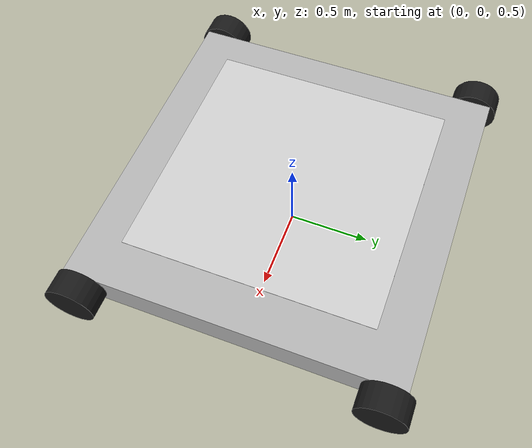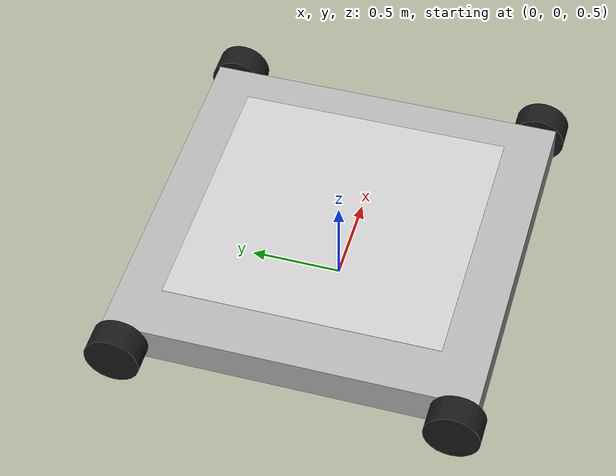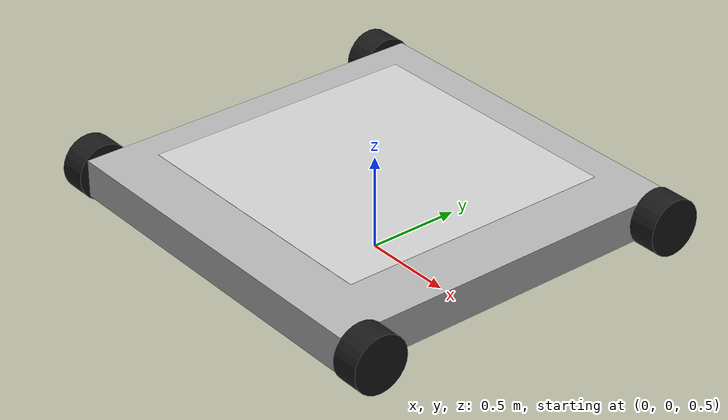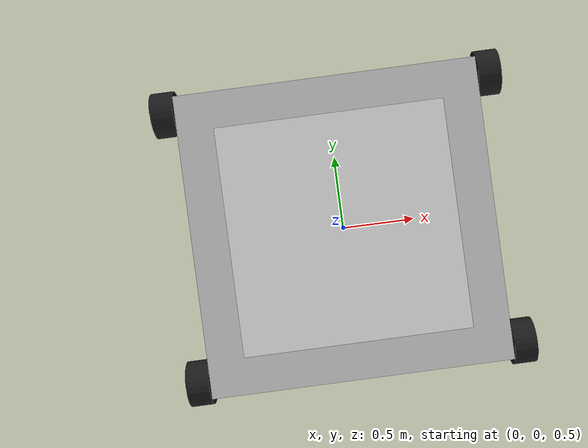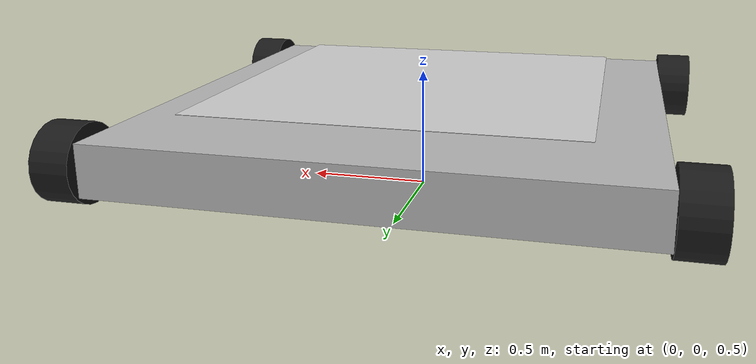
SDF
<sdf version="1.7">
 <world name="aruco_runway_rover">
  <plugin filename="gz-sim-physics-system" name="gz::sim::systems::Physics"/>
  <plugin filename="gz-sim-user-commands-system" name="gz::sim::systems::UserCommands"/>
  <plugin filename="gz-sim-scene-broadcaster-system" name="gz::sim::systems::SceneBroadcaster"/>
  <plugin filename="gz-sim-imu-system" name="gz::sim::systems::Imu"/>
  <scene><ambient>1.0 1.0 1.0</ambient><background>0.8 0.8 0.8</background></scene>
  <light type="directional" name="sun">
   <pose>0 0 10 0 0 0</pose>
   <diffuse>0.8 0.8 0.8 1</diffuse>
   <specular>0.8 0.8 0.8 1</specular>
   <attenuation>
    <range>1000</range>
    <constant>0.9</constant>
    <linear>0.01</linear>
    <quadratic>0.001</quadratic>
   </attenuation>
   <direction>-0.5 0.1 -0.9</direction>
  </light>
  <include><pose degrees="true">0 0 0.5 0 0 90</pose><uri>model://rover_with_aruco</uri></include>
 </world>
</sdf>

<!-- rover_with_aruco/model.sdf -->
<sdf version='1.9'>
  <model name='rover_with_aruco'>
    <!-- =========================== CHASSIS (底盤) =========================== -->
    <link name='base_link'>
      <pose>0 0 0.3 0 0 0</pose>

      <!-- Inertial properties (慣性) -->
      <inertial>
        <pose>0 0 0 0 0 0</pose>
        <mass>80.0</mass>
        <inertia>
          <ixx>26.666667</ixx>
          <ixy>0</ixy>
          <ixz>0</ixz>
          <iyy>26.666667</iyy>
          <iyz>0</iyz>
          <izz>53.333333</izz>
        </inertia>
      </inertial>

      <!-- collision (碰撞) -->
      <collision name='base_coll'>
        <pose>0 0 0 0 0 0</pose>
        <geometry>
          <box>
            <size>2 2 0.2</size>
          </box>
        </geometry>
      </collision>

      <!-- Visual and collision (外觀與顏色) -->
      <visual name='base_vis'>
        <pose>0 0 0 0 0 0</pose>
        <geometry>
          <box>
            <size>2 2 0.2</size>
          </box>
        </geometry>
        <material>
          <diffuse>0.7 0.7 0.7 1</diffuse>
          <specular>0.1 0.1 0.1 1</specular>
        </material>
      </visual>

      <!-- IMU 感測器 -->
      <sensor name="imu_sensor" type="imu">
        <pose degrees="true">0 0 0 180 0 0</pose>
        <always_on>1</always_on>
        <update_rate>1000</update_rate>
      </sensor>

      <!-- Air 氣壓計 -->
      <sensor name="air_pressure_sensor" type="air_pressure">
        <always_on>1</always_on>
        <update_rate>50</update_rate>
        <air_pressure>
          <pressure>
            <noise type="gaussian">
              <mean>0</mean>
              <stddev>0.01</stddev>
            </noise>
          </pressure>
        </air_pressure>
      </sensor>
    </link>

    <!-- =========================== 左前輪 =========================== -->
    <link name='lf_wheel_link'>
      <pose>0.90 1.075 0.30 0 0 0</pose>

      <!-- Inertial properties (慣性) -->
      <inertial>
        <pose>0 0 0 0 0 0</pose>
        <mass>4.0</mass>
        <inertia>
          <ixx>0.0381</ixx>
          <ixy>0</ixy>
          <ixz>0</ixz>
          <iyy>0.0381</iyy>
          <iyz>0</iyz>
          <izz>0.0612</izz>
        </inertia>
      </inertial>

      <!-- collision (碰撞) -->
      <collision name='lf_coll'>
        <pose>0 0 0 1.57079632679 0 0</pose>
        <geometry>
          <cylinder>
            <radius>0.15</radius>
            <length>0.15</length>
          </cylinder>
        </geometry>

        <!-- 表面係數 -->
        <surface>
          <friction>
            <ode>
              <mu>0.70</mu>
              <mu2>0.625</mu2>
              <fdir1>1 0 0</fdir1>
            </ode>
            <torsional>
              <coefficient>0.15</coefficient>
              <use_patch_radius>1</use_patch_radius>
              <surface_radius>0.15</surface_radius>
            </torsional>
          </friction>
          <bounce>
            <restitution_coefficient>0</restitution_coefficient>
            <threshold>1e6</threshold>
          </bounce>
          <contact>
            <ode>
              <min_depth>0.001</min_depth>
              <max_vel>0.0</max_vel>
              <kp>1.0e6</kp>
              <kd>100.0</kd>
            </ode>
          </contact>
        </surface>
      </collision>

      <!-- Visual and collision (外觀與顏色) -->
      <visual name='lf_vis'>
        <pose>0 0 0 1.57079632679 0 0</pose>
        <geometry>
          <cylinder>
            <radius>0.15</radius>
            <length>0.15</length>
          </cylinder>
        </geometry>
        <material>
          <diffuse>0.1 0.1 0.1 1</diffuse>
          <specular>0.5 0.5 0.5 1</specular>
        </material>
      </visual>
    </link>

    <!-- Joint Controllers (控制) -->
    <joint name='motor_lf' type='revolute'>
      <parent>base_link</parent>
      <child>lf_wheel_link</child>
      <axis>
        <xyz>0 1 0</xyz>
        <limit>
          <lower>-1e+16</lower>
          <upper>1e+16</upper>
        </limit>
        <dynamics>
          <damping>0.0005</damping>
        </dynamics>
      </axis>
    </joint>

    <!-- =========================== 左後輪 =========================== -->
    <link name='lb_wheel_link'>
      <pose>-0.90 1.075 0.30 0 0 0</pose>

      <!-- Inertial properties (慣性) -->
      <inertial>
        <pose>0 0 0 0 0 0</pose>
        <mass>4.0</mass>
        <inertia>
          <ixx>0.0381</ixx>
          <ixy>0</ixy>
          <ixz>0</ixz>
          <iyy>0.0381</iyy>
          <iyz>0</iyz>
          <izz>0.0612</izz>
        </inertia>
      </inertial>

      <!-- collision (碰撞) -->
      <collision name='lb_coll'>
        <pose>0 0 0 1.57079632679 0 0</pose>
        <geometry>
          <cylinder>
            <radius>0.15</radius>
            <length>0.15</length>
          </cylinder>
        </geometry>

        <!-- 表面係數 -->
        <surface>
          <friction>
            <ode>
              <mu>0.70</mu>
              <mu2>0.625</mu2>
              <fdir1>1 0 0</fdir1>
            </ode>
            <torsional>
              <coefficient>0.15</coefficient>
              <use_patch_radius>1</use_patch_radius>
              <surface_radius>0.15</surface_radius>
            </torsional>
          </friction>
          <bounce>
            <restitution_coefficient>0</restitution_coefficient>
            <threshold>1e6</threshold>
          </bounce>
          <contact>
            <ode>
              <min_depth>0.001</min_depth>
              <max_vel>0.0</max_vel>
              <kp>1.0e6</kp>
              <kd>100.0</kd>
            </ode>
          </contact>
        </surface>
      </collision>

      <!-- Visual and collision (外觀與顏色) -->
      <visual name='lb_vis'>
        <pose>0 0 0 1.57079632679 0 0</pose>
        <geometry>
          <cylinder>
            <radius>0.15</radius>
            <length>0.15</length>
          </cylinder>
        </geometry>
        <material>
          <diffuse>0.1 0.1 0.1 1</diffuse>
          <specular>0.5 0.5 0.5 1</specular>
        </material>
      </visual>
    </link>

    <!-- Joint Controllers (控制) -->
    <joint name='motor_lb' type='revolute'>
      <parent>base_link</parent>
      <child>lb_wheel_link</child>
      <axis>
        <xyz>0 1 0</xyz>
        <limit>
          <lower>-1e+16</lower>
          <upper>1e+16</upper>
        </limit>
        <dynamics>
          <damping>0.0005</damping>
        </dynamics>
      </axis>
    </joint>

    <!-- =========================== 右前輪 =========================== -->
    <link name='rf_wheel_link'>
      <pose>0.90 -1.075 0.30 0 0 0</pose>

      <!-- Inertial properties (慣性) -->
      <inertial>
        <pose>0 0 0 0 0 0</pose>
        <mass>4.0</mass>
        <inertia>
          <ixx>0.0381</ixx>
          <ixy>0</ixy>
          <ixz>0</ixz>
          <iyy>0.0381</iyy>
          <iyz>0</iyz>
          <izz>0.0612</izz>
        </inertia>
      </inertial>

      <!-- collision (碰撞) -->
      <collision name='rf_coll'>
        <pose>0 0 0 1.57079632679 0 0</pose>
        <geometry>
          <cylinder>
            <radius>0.15</radius>
            <length>0.15</length>
          </cylinder>
        </geometry>

        <!-- 表面係數 -->
        <surface>
          <friction>
            <ode>
              <mu>0.70</mu>
              <mu2>0.625</mu2>
              <fdir1>1 0 0</fdir1>
            </ode>
            <torsional>
              <coefficient>0.15</coefficient>
              <use_patch_radius>1</use_patch_radius>
              <surface_radius>0.15</surface_radius>
            </torsional>
          </friction>
          <bounce>
            <restitution_coefficient>0</restitution_coefficient>
            <threshold>1e6</threshold>
          </bounce>
          <contact>
            <ode>
              <min_depth>0.001</min_depth>
              <max_vel>0.0</max_vel>
              <kp>1.0e6</kp>
              <kd>100.0</kd>
            </ode>
          </contact>
        </surface>
      </collision>

      <!-- Visual and collision (外觀與顏色) -->
      <visual name='rf_vis'>
        <pose>0 0 0 1.57079632679 0 0</pose>
        <geometry>
          <cylinder>
            <radius>0.15</radius>
            <length>0.15</length>
          </cylinder>
        </geometry>
        <material>
          <diffuse>0.1 0.1 0.1 1</diffuse>
          <specular>0.5 0.5 0.5 1</specular>
        </material>
      </visual>
    </link>

    <!-- Joint Controllers (控制) -->
    <joint name='motor_rf' type='revolute'>
      <parent>base_link</parent>
      <child>rf_wheel_link</child>
      <axis>
        <xyz>0 -1 0</xyz>
        <limit>
          <lower>-1e+16</lower>
          <upper>1e+16</upper>
        </limit>
        <dynamics>
          <damping>0.0005</damping>
        </dynamics>
      </axis>
    </joint>

    <!-- =========================== 右後輪 =========================== -->
    <link name='rb_wheel_link'>
      <pose>-0.90 -1.075 0.30 0 0 0</pose>

      <!-- Inertial properties (慣性) -->
      <inertial>
        <pose>0 0 0 0 0 0</pose>
        <mass>4.0</mass>
        <inertia>
          <ixx>0.0381</ixx>
          <ixy>0</ixy>
          <ixz>0</ixz>
          <iyy>0.0381</iyy>
          <iyz>0</iyz>
          <izz>0.0612</izz>
        </inertia>
      </inertial>

      <!-- collision (碰撞) -->
      <collision name='rb_coll'>
        <pose>0 0 0 1.57079632679 0 0</pose>
        <geometry>
          <cylinder>
            <radius>0.15</radius>
            <length>0.15</length>
          </cylinder>
        </geometry>

        <!-- 表面係數 -->
        <surface>
          <friction>
            <ode>
              <mu>0.70</mu>
              <mu2>0.625</mu2>
              <fdir1>1 0 0</fdir1>
            </ode>
            <torsional>
              <coefficient>0.15</coefficient>
              <use_patch_radius>1</use_patch_radius>
              <surface_radius>0.15</surface_radius>
            </torsional>
          </friction>
          <bounce>
            <restitution_coefficient>0</restitution_coefficient>
            <threshold>1e6</threshold>
          </bounce>
          <contact>
            <ode>
              <min_depth>0.001</min_depth>
              <max_vel>0.0</max_vel>
              <kp>1.0e6</kp>
              <kd>100.0</kd>
            </ode>
          </contact>
        </surface>
      </collision>

      <!-- Visual and collision (外觀與顏色) -->
      <visual name='rb_vis'>
        <pose>0 0 0 1.57079632679 0 0</pose>
        <geometry>
          <cylinder>
            <radius>0.15</radius>
            <length>0.15</length>
          </cylinder>
        </geometry>
        <material>
          <diffuse>0.1 0.1 0.1 1</diffuse>
          <specular>0.5 0.5 0.5 1</specular>
        </material>
      </visual>
    </link>

    <!-- Joint Controllers (控制) -->
    <joint name='motor_rb' type='revolute'>
      <parent>base_link</parent>
      <child>rb_wheel_link</child>
      <axis>
        <xyz>0 -1 0</xyz>
        <limit>
          <lower>-1e+16</lower>
          <upper>1e+16</upper>
        </limit>
        <dynamics>
          <damping>0.0005</damping>
        </dynamics>
      </axis>
    </joint>

    <!-- ======================== ARUCO PANEL ======================== -->
    <link name='aruco_panel_link'>
      <pose degrees="true">0 0 0.455 0 0 -90</pose>

      <!-- Inertial properties (慣性) -->
      <inertial>
        <pose>0 0 0 0 0 0</pose>
        <mass>1.0</mass>
        <inertia>
          <ixx>0.1875</ixx>
          <ixy>0</ixy>
          <ixz>0</ixz>
          <iyy>0.1875</iyy>
          <iyz>0</iyz>
          <izz>0.375</izz>
        </inertia>
      </inertial>

      <!-- collision (碰撞) -->
      <collision name='aruco_coll'>
        <geometry>
          <box>
            <size>1.5 1.5 0.01</size>
          </box>
        </geometry>
      </collision>

      <!-- Visual and collision (外觀與顏色) -->
      <visual name="aruco_visual">
        <pose>0 0 0 0 0 0</pose>
        <cast_shadows>false</cast_shadows>
        <geometry>
          <plane>
            <normal>0 0 1</normal>
            <size>1.5 1.5</size>
          </plane>
        </geometry>
        <material>
          <ambient>0.8 0.8 0.8 1</ambient>
          <diffuse>0.8 0.8 0.8 1</diffuse>
          <specular>0.1 0.1 0.1 1</specular>
          <pbr>
            <metal>
              <albedo_map>materials/textures/aruco_04.png</albedo_map>
              <roughness>0.6</roughness>
              <metalness>0</metalness>
            </metal>
          </pbr>
        </material>
      </visual>
    </link>

    <!-- Joint Controllers (控制) -->
    <joint name='aruco_panel_fixed' type='fixed'>
      <parent>base_link</parent>
      <child>aruco_panel_link</child>
    </joint>

    <!-- ==================== GZ SYSTEM PLUGINS ====================== -->
    <plugin name="gz::sim::systems::JointStatePublisher"
      filename="gz-sim-joint-state-publisher-system">
    </plugin>

    <plugin name='gz::sim::systems::OdometryPublisher' filename='gz-sim-odometry-publisher-system'>
      <odom_frame>odom</odom_frame>
      <robot_base_frame>base_link</robot_base_frame>
      <dimensions>3</dimensions>
    </plugin>

    <plugin filename="gz-sim-apply-joint-force-system"
      name="gz::sim::systems::ApplyJointForce">
      <joint_name>motor_lf</joint_name>
      </plugin>
    <plugin filename="gz-sim-apply-joint-force-system"
      name="gz::sim::systems::ApplyJointForce">
      <joint_name>motor_lb</joint_name>
      </plugin>
    <plugin filename="gz-sim-apply-joint-force-system"
      name="gz::sim::systems::ApplyJointForce">
      <joint_name>motor_rf</joint_name>
    </plugin>
    <plugin
      filename="gz-sim-apply-joint-force-system"
      name="gz::sim::systems::ApplyJointForce">
      <joint_name>motor_rb</joint_name>
    </plugin>

    <!-- ===================== ARDUPILOT PLUGIN ====================== -->
    <plugin name='ArduPilotPlugin' filename='ArduPilotPlugin'>
      <fdm_addr>127.0.0.1</fdm_addr>
      <fdm_port_in>9022</fdm_port_in>
      <connectionTimeoutMaxCount>5</connectionTimeoutMaxCount>
      <lock_step>1</lock_step>
      <!-- Retain user's original transforms; adjust if needed -->
      <gazeboXYZToNED degrees='true'>0 0 0 180 0 90</gazeboXYZToNED>
      <modelXYZToAirplaneXForwardZDown degrees='true'>0 0 0 180 0 0</modelXYZToAirplaneXForwardZDown>
      <imuName>base_link::imu_sensor</imuName>

      <!-- LEFT SIDE (front + rear) -->
      <control channel='0'>
        <jointName>motor_lf</jointName>
        <useForce>1</useForce>
        <type>VELOCITY</type>
        <multiplier>133.33</multiplier>
        <offset>-0.5</offset>
        <servo_min>1000</servo_min>
        <servo_max>2000</servo_max>
        <p_gain>1.4</p_gain>
        <i_gain>0.1</i_gain>
        <d_gain>0.0001</d_gain>
        <i_max>1</i_max>
        <i_min>-1</i_min>
        <cmd_max>22</cmd_max>
        <cmd_min>-22</cmd_min>
      </control>
      <control channel='0'>
        <jointName>motor_lb</jointName>
        <useForce>1</useForce>
        <type>VELOCITY</type>
        <multiplier>133.33</multiplier>
        <offset>-0.5</offset>
        <servo_min>1000</servo_min>
        <servo_max>2000</servo_max>
        <p_gain>1.4</p_gain>
        <i_gain>0.1</i_gain>
        <d_gain>0.0001</d_gain>
        <i_max>1</i_max>
        <i_min>-1</i_min>
        <cmd_max>22</cmd_max>
        <cmd_min>-22</cmd_min>
      </control>

      <!-- RIGHT SIDE (front + rear)  NOTE: negative multiplier for mirrored axis -->
      <control channel='2'>
        <jointName>motor_rf</jointName>
        <useForce>1</useForce>
        <type>VELOCITY</type>
        <multiplier>-133.33</multiplier>
        <offset>-0.5</offset>
        <servo_min>1000</servo_min>
        <servo_max>2000</servo_max>
        <p_gain>1.4</p_gain>
        <i_gain>0.1</i_gain>
        <d_gain>0.0001</d_gain>
        <i_max>1</i_max>
        <i_min>-1</i_min>
        <cmd_max>22</cmd_max>
        <cmd_min>-22</cmd_min>
      </control>
      <control channel='2'>
        <jointName>motor_rb</jointName>
        <useForce>1</useForce>
        <type>VELOCITY</type>
        <multiplier>-133.33</multiplier>
        <offset>-0.5</offset>
        <servo_min>1000</servo_min>
        <servo_max>2000</servo_max>
        <p_gain>1.4</p_gain>
        <i_gain>0.1</i_gain>
        <d_gain>0.001</d_gain>
        <i_max>1</i_max>
        <i_min>-1</i_min>
        <cmd_max>22</cmd_max>
        <cmd_min>-22</cmd_min>
      </control>
    </plugin>

  </model>
</sdf>
